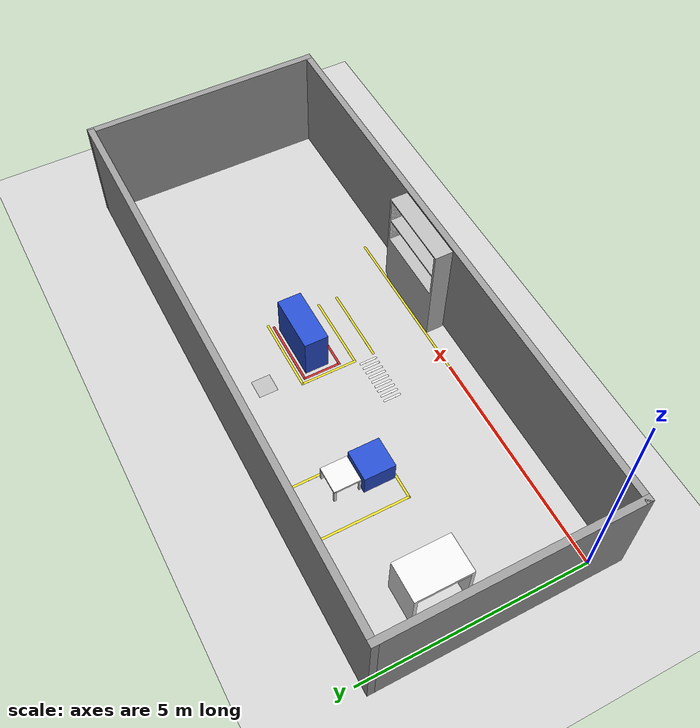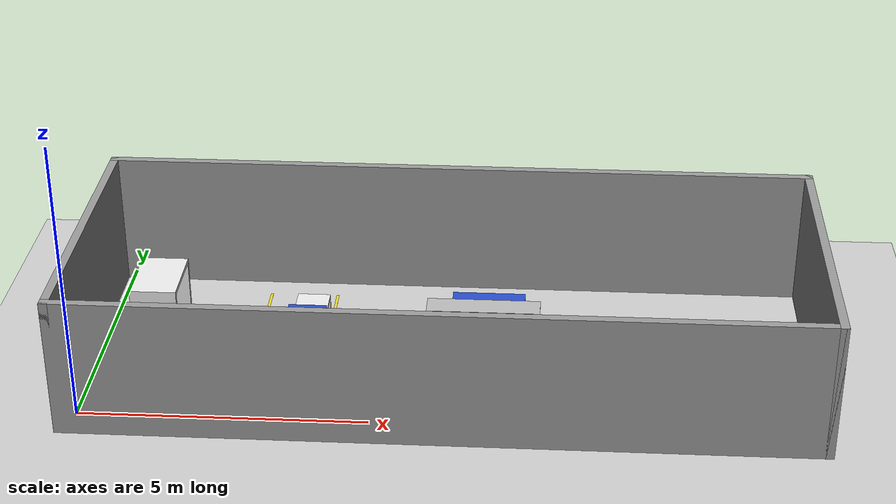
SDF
<sdf version="1.6">
 <world name="default">
  <model name="ground_plane">
   <static>1</static>
   <link name="link">
    <collision name="collision">
     <geometry><plane><normal>0 0 1</normal><size>100 100</size></plane></geometry>
     <surface><friction><ode><mu>100</mu><mu2>50</mu2></ode></friction></surface>
    </collision>
    <visual name="visual">
     <cast_shadows>0</cast_shadows>
     <geometry><plane><normal>0 0 1</normal><size>100 100</size></plane></geometry>
     <material>
      <script><uri>file://media/materials/scripts/gazebo.material</uri><name>Gazebo/Grey</name></script>
     </material>
    </visual>
   </link>
  </model>
  <model name="line4m">
   <link name="link_3">
    <inertial>
     <mass>1</mass>
     <inertia>
      <ixx>0.166667</ixx>
      <ixy>0</ixy>
      <ixz>0</ixz>
      <iyy>0.166667</iyy>
      <iyz>0</iyz>
      <izz>0.166667</izz>
     </inertia>
    </inertial>
    <visual name="visual">
     <geometry><box><size>0.05 4 0.001</size></box></geometry>
     <material>
      <lighting>1</lighting>
      <script><uri>file://media/materials/scripts/gazebo.material</uri><name>Gazebo/Yellow</name></script>
     </material>
    </visual>
   </link>
   <static>1</static>
   <pose>6.8 0 0 0 -0 1.5708</pose>
  </model>
  <model name="forkliftRoadSign_1">
   <link name="link_7">
    <inertial>
     <mass>1</mass>
     <inertia>
      <ixx>0.166667</ixx>
      <ixy>0</ixy>
      <ixz>0</ixz>
      <iyy>0.166667</iyy>
      <iyz>0</iyz>
      <izz>0.166667</izz>
     </inertia>
    </inertial>
    <visual name="visual">
     <pose>-0.2 -0.2 0.01 -1.5708 -0 0</pose>
     <geometry>
      <mesh><uri>model://forkliftRoadSign/model/model.dae</uri><scale>0.7 0.7 0.7</scale></mesh>
     </geometry>
     <material><lighting>1</lighting></material>
    </visual>
   </link>
   <static>1</static>
   <pose>6.37777 3.72064 0 0 0 -1.5708</pose>
  </model>
  <model name="cocktail_table">
   <link name="link_1">
    <inertial>
     <mass>1</mass>
     <inertia>
      <ixx>0.166667</ixx>
      <ixy>0</ixy>
      <ixz>0</ixz>
      <iyy>0.166667</iyy>
      <iyz>0</iyz>
      <izz>0.166667</izz>
     </inertia>
    </inertial>
    <visual name="visual">
     <pose>0.42 -0.71 -0.505 0 -0 1.5708</pose>
     <geometry>
      <mesh><uri>model://cocktail_table/model/model.dae</uri><scale>0.96 1.4 0.95</scale></mesh>
     </geometry>
     <material>
      <lighting>1</lighting>
      <script><uri>file://media/materials/scripts/gazebo.material</uri><name>Gazebo/White</name></script>
     </material>
    </visual>
    <collision name="collision">
     <geometry><box><size>0.84 1.26 1.05</size></box></geometry>
     <surface>
      <friction>
       <ode><mu>1</mu><mu2>1</mu2><fdir1>0 0 0</fdir1><slip1>0</slip1><slip2>0</slip2></ode>
       <torsional>
        <coefficient>1</coefficient>
        <patch_radius>0</patch_radius>
        <surface_radius>0</surface_radius>
        <use_patch_radius>1</use_patch_radius>
        <ode><slip>0</slip></ode>
       </torsional>
      </friction>
      <bounce><restitution_coefficient>0</restitution_coefficient><threshold>1e+06</threshold></bounce>
      <contact>
       <collide_without_contact>0</collide_without_contact>
       <collide_without_contact_bitmask>1</collide_without_contact_bitmask>
       <collide_bitmask>1</collide_bitmask>
       <ode>
        <soft_cfm>0</soft_cfm>
        <soft_erp>0.2</soft_erp>
        <kp>1e+13</kp>
        <kd>1</kd>
        <max_vel>0.01</max_vel>
        <min_depth>0</min_depth>
       </ode>
       <bullet>
        <split_impulse>1</split_impulse>
        <split_impulse_penetration_threshold>-0.01</split_impulse_penetration_threshold>
        <soft_cfm>0</soft_cfm>
        <soft_erp>0.2</soft_erp>
        <kp>1e+13</kp>
        <kd>1</kd>
       </bullet>
      </contact>
     </surface>
    </collision>
   </link>
   <static>1</static>
   <pose>0.917342 2.93643 0.525321 0 -0 0</pose>
  </model>
  <model name="zebraCrossing9">
   <link name="link_0">
    <inertial>
     <mass>1</mass>
     <inertia>
      <ixx>0.166667</ixx>
      <ixy>0</ixy>
      <ixz>0</ixz>
      <iyy>0.166667</iyy>
      <iyz>0</iyz>
      <izz>0.166667</izz>
     </inertia>
    </inertial>
    <visual name="visual">
     <geometry><box><size>0.05 0.4 0.001</size></box></geometry>
     <material>
      <lighting>1</lighting>
      <script><uri>file://media/materials/scripts/gazebo.material</uri><name>Gazebo/White</name></script>
      <shader type="pixel"><normal_map>__default__</normal_map></shader>
      <ambient>1 1 1 1</ambient>
      <diffuse>1 1 1 1</diffuse>
      <specular>0.01 0.01 0.01 1</specular>
      <emissive>0 0 0 1</emissive>
     </material>
     <cast_shadows>0</cast_shadows>
    </visual>
    <visual name="ModelPreview_0::link_0::visual_1">
     <pose>0.13 0 0 0 -0 0</pose>
     <geometry><box><size>0.05 0.4 0.001</size></box></geometry>
     <material>
      <lighting>1</lighting>
      <script><uri>file://media/materials/scripts/gazebo.material</uri><name>Gazebo/White</name></script>
      <shader type="pixel"><normal_map>__default__</normal_map></shader>
      <ambient>1 1 1 1</ambient>
      <diffuse>1 1 1 1</diffuse>
      <specular>0.01 0.01 0.01 1</specular>
      <emissive>0 0 0 1</emissive>
     </material>
     <cast_shadows>0</cast_shadows>
    </visual>
    <visual name="ModelPreview_0::link_0::visual_2">
     <pose>0.26 0 0 0 -0 0</pose>
     <geometry><box><size>0.05 0.4 0.001</size></box></geometry>
     <material>
      <lighting>1</lighting>
      <script><uri>file://media/materials/scripts/gazebo.material</uri><name>Gazebo/White</name></script>
      <shader type="pixel"><normal_map>__default__</normal_map></shader>
      <ambient>1 1 1 1</ambient>
      <diffuse>1 1 1 1</diffuse>
      <specular>0.01 0.01 0.01 1</specular>
      <emissive>0 0 0 1</emissive>
     </material>
     <cast_shadows>0</cast_shadows>
    </visual>
    <visual name="ModelPreview_0::link_0::visual_3">
     <pose>0.39 0 0 0 -0 0</pose>
     <geometry><box><size>0.05 0.4 0.001</size></box></geometry>
     <material>
      <lighting>1</lighting>
      <script><uri>file://media/materials/scripts/gazebo.material</uri><name>Gazebo/White</name></script>
      <shader type="pixel"><normal_map>__default__</normal_map></shader>
      <ambient>1 1 1 1</ambient>
      <diffuse>1 1 1 1</diffuse>
      <specular>0.01 0.01 0.01 1</specular>
      <emissive>0 0 0 1</emissive>
     </material>
     <cast_shadows>0</cast_shadows>
    </visual>
    <visual name="ModelPreview_0::link_0::visual_4">
     <pose>0.52 0 0 0 -0 0</pose>
     <geometry><box><size>0.05 0.4 0.001</size></box></geometry>
     <material>
      <lighting>1</lighting>
      <script><uri>file://media/materials/scripts/gazebo.material</uri><name>Gazebo/White</name></script>
      <shader type="pixel"><normal_map>__default__</normal_map></shader>
      <ambient>1 1 1 1</ambient>
      <diffuse>1 1 1 1</diffuse>
      <specular>0.01 0.01 0.01 1</specular>
      <emissive>0 0 0 1</emissive>
     </material>
     <cast_shadows>0</cast_shadows>
    </visual>
    <visual name="ModelPreview_0::link_0::visual_5">
     <pose>-0.13 0 0 0 -0 0</pose>
     <geometry><box><size>0.05 0.4 0.001</size></box></geometry>
     <material>
      <lighting>1</lighting>
      <script><uri>file://media/materials/scripts/gazebo.material</uri><name>Gazebo/White</name></script>
      <shader type="pixel"><normal_map>__default__</normal_map></shader>
      <ambient>1 1 1 1</ambient>
      <diffuse>1 1 1 1</diffuse>
      <specular>0.01 0.01 0.01 1</specular>
      <emissive>0 0 0 1</emissive>
     </material>
     <cast_shadows>0</cast_shadows>
    </visual>
    <visual name="ModelPreview_0::link_0::visual_6">
     <pose>-0.26 0 0 0 -0 0</pose>
     <geometry><box><size>0.05 0.4 0.001</size></box></geometry>
     <material>
      <lighting>1</lighting>
      <script><uri>file://media/materials/scripts/gazebo.material</uri><name>Gazebo/White</name></script>
      <shader type="pixel"><normal_map>__default__</normal_map></shader>
      <ambient>1 1 1 1</ambient>
      <diffuse>1 1 1 1</diffuse>
      <specular>0.01 0.01 0.01 1</specular>
      <emissive>0 0 0 1</emissive>
     </material>
     <cast_shadows>0</cast_shadows>
    </visual>
    <visual name="ModelPreview_0::link_0::visual_7">
     <pose>-0.39 0 0 0 -0 0</pose>
     <geometry><box><size>0.05 0.4 0.001</size></box></geometry>
     <material>
      <lighting>1</lighting>
      <script><uri>file://media/materials/scripts/gazebo.material</uri><name>Gazebo/White</name></script>
      <shader type="pixel"><normal_map>__default__</normal_map></shader>
      <ambient>1 1 1 1</ambient>
      <diffuse>1 1 1 1</diffuse>
      <specular>0.01 0.01 0.01 1</specular>
      <emissive>0 0 0 1</emissive>
     </material>
     <cast_shadows>0</cast_shadows>
    </visual>
    <visual name="ModelPreview_0::link_0::visual_8">
     <pose>-0.52 0 0 0 -0 0</pose>
     <geometry><box><size>0.05 0.4 0.001</size></box></geometry>
     <material>
      <lighting>1</lighting>
      <script><uri>file://media/materials/scripts/gazebo.material</uri><name>Gazebo/White</name></script>
      <shader type="pixel"><normal_map>__default__</normal_map></shader>
      <ambient>1 1 1 1</ambient>
      <diffuse>1 1 1 1</diffuse>
      <specular>0.01 0.01 0.01 1</specular>
      <emissive>0 0 0 1</emissive>
     </material>
     <cast_shadows>0</cast_shadows>
    </visual>
   </link>
   <static>1</static>
   <pose>5.43019 1.45864 0 0 -0 0</pose>
  </model>
  <model name="line175cm_0">
   <link name="link_1">
    <inertial>
     <mass>1</mass>
     <inertia>
      <ixx>0.166667</ixx>
      <ixy>0</ixy>
      <ixz>0</ixz>
      <iyy>0.166667</iyy>
      <iyz>0</iyz>
      <izz>0.166667</izz>
     </inertia>
    </inertial>
    <visual name="visual">
     <geometry><box><size>1.75 0.05 0.001</size></box></geometry>
     <material>
      <script><uri>file://media/materials/scripts/gazebo.material</uri><name>Gazebo/Yellow</name></script>
     </material>
    </visual>
    <collision name="collision">
     <geometry><box><size>1.75 0.05 1e-05</size></box></geometry>
     <surface>
      <friction>
       <ode><mu>1</mu><mu2>1</mu2><fdir1>0 0 0</fdir1><slip1>0</slip1><slip2>0</slip2></ode>
       <torsional>
        <coefficient>1</coefficient>
        <patch_radius>0</patch_radius>
        <surface_radius>0</surface_radius>
        <use_patch_radius>1</use_patch_radius>
        <ode><slip>0</slip></ode>
       </torsional>
      </friction>
      <bounce><restitution_coefficient>0</restitution_coefficient><threshold>1e+06</threshold></bounce>
      <contact>
       <collide_without_contact>0</collide_without_contact>
       <collide_without_contact_bitmask>1</collide_without_contact_bitmask>
       <collide_bitmask>1</collide_bitmask>
       <ode>
        <soft_cfm>0</soft_cfm>
        <soft_erp>0.2</soft_erp>
        <kp>1e+13</kp>
        <kd>1</kd>
        <max_vel>0.01</max_vel>
        <min_depth>0</min_depth>
       </ode>
       <bullet>
        <split_impulse>1</split_impulse>
        <split_impulse_penetration_threshold>-0.01</split_impulse_penetration_threshold>
        <soft_cfm>0</soft_cfm>
        <soft_erp>0.2</soft_erp>
        <kp>1e+13</kp>
        <kd>1</kd>
       </bullet>
      </contact>
     </surface>
    </collision>
   </link>
   <static>1</static>
   <pose>6.925 2.97 0 0 -0 0</pose>
  </model>
  <model name="line175cm_0_clone">
   <link name="link_1">
    <inertial>
     <mass>1</mass>
     <inertia>
      <ixx>0.166667</ixx>
      <ixy>0</ixy>
      <ixz>0</ixz>
      <iyy>0.166667</iyy>
      <iyz>0</iyz>
      <izz>0.166667</izz>
     </inertia>
    </inertial>
    <visual name="visual">
     <geometry><box><size>1.75 0.05 0.001</size></box></geometry>
     <material>
      <script><uri>file://media/materials/scripts/gazebo.material</uri><name>Gazebo/Yellow</name></script>
     </material>
    </visual>
    <collision name="collision">
     <geometry><box><size>1.75 0.05 1e-05</size></box></geometry>
     <surface>
      <friction>
       <ode><mu>1</mu><mu2>1</mu2><fdir1>0 0 0</fdir1><slip1>0</slip1><slip2>0</slip2></ode>
       <torsional>
        <coefficient>1</coefficient>
        <patch_radius>0</patch_radius>
        <surface_radius>0</surface_radius>
        <use_patch_radius>1</use_patch_radius>
        <ode><slip>0</slip></ode>
       </torsional>
      </friction>
      <bounce><restitution_coefficient>0</restitution_coefficient><threshold>1e+06</threshold></bounce>
      <contact>
       <collide_without_contact>0</collide_without_contact>
       <collide_without_contact_bitmask>1</collide_without_contact_bitmask>
       <collide_bitmask>1</collide_bitmask>
       <ode>
        <soft_cfm>0</soft_cfm>
        <soft_erp>0.2</soft_erp>
        <kp>1e+13</kp>
        <kd>1</kd>
        <max_vel>0.01</max_vel>
        <min_depth>0</min_depth>
       </ode>
       <bullet>
        <split_impulse>1</split_impulse>
        <split_impulse_penetration_threshold>-0.01</split_impulse_penetration_threshold>
        <soft_cfm>0</soft_cfm>
        <soft_erp>0.2</soft_erp>
        <kp>1e+13</kp>
        <kd>1</kd>
       </bullet>
      </contact>
     </surface>
    </collision>
   </link>
   <static>1</static>
   <pose>6.925 1.72 0 0 -0 0</pose>
  </model>
  <model name="line175cm_0_clone_clone">
   <link name="link_1">
    <inertial>
     <mass>1</mass>
     <inertia>
      <ixx>0.166667</ixx>
      <ixy>0</ixy>
      <ixz>0</ixz>
      <iyy>0.166667</iyy>
      <iyz>0</iyz>
      <izz>0.166667</izz>
     </inertia>
    </inertial>
    <visual name="visual">
     <geometry><box><size>1.75 0.05 0.001</size></box></geometry>
     <material>
      <script><uri>file://media/materials/scripts/gazebo.material</uri><name>Gazebo/Yellow</name></script>
     </material>
    </visual>
    <collision name="collision">
     <geometry><box><size>1.75 0.05 1e-05</size></box></geometry>
     <surface>
      <friction>
       <ode><mu>1</mu><mu2>1</mu2><fdir1>0 0 0</fdir1><slip1>0</slip1><slip2>0</slip2></ode>
       <torsional>
        <coefficient>1</coefficient>
        <patch_radius>0</patch_radius>
        <surface_radius>0</surface_radius>
        <use_patch_radius>1</use_patch_radius>
        <ode><slip>0</slip></ode>
       </torsional>
      </friction>
      <bounce><restitution_coefficient>0</restitution_coefficient><threshold>1e+06</threshold></bounce>
      <contact>
       <collide_without_contact>0</collide_without_contact>
       <collide_without_contact_bitmask>1</collide_without_contact_bitmask>
       <collide_bitmask>1</collide_bitmask>
       <ode>
        <soft_cfm>0</soft_cfm>
        <soft_erp>0.2</soft_erp>
        <kp>1e+13</kp>
        <kd>1</kd>
        <max_vel>0.01</max_vel>
        <min_depth>0</min_depth>
       </ode>
       <bullet>
        <split_impulse>1</split_impulse>
        <split_impulse_penetration_threshold>-0.01</split_impulse_penetration_threshold>
        <soft_cfm>0</soft_cfm>
        <soft_erp>0.2</soft_erp>
        <kp>1e+13</kp>
        <kd>1</kd>
       </bullet>
      </contact>
     </surface>
    </collision>
   </link>
   <static>1</static>
   <pose>6.925 1.27 0 0 -0 0</pose>
  </model>
  <model name="line130cm_0_clone">
   <link name="link_1">
    <inertial>
     <mass>1</mass>
     <inertia>
      <ixx>0.166667</ixx>
      <ixy>0</ixy>
      <ixz>0</ixz>
      <iyy>0.166667</iyy>
      <iyz>0</iyz>
      <izz>0.166667</izz>
     </inertia>
    </inertial>
    <visual name="visual">
     <geometry><box><size>1.3 0.05 0.001</size></box></geometry>
     <material>
      <script><uri>file://media/materials/scripts/gazebo.material</uri><name>Gazebo/Yellow</name></script>
     </material>
    </visual>
    <collision name="collision">
     <geometry><box><size>1.3 0.05 1e-05</size></box></geometry>
     <surface>
      <friction>
       <ode><mu>1</mu><mu2>1</mu2><fdir1>0 0 0</fdir1><slip1>0</slip1><slip2>0</slip2></ode>
       <torsional>
        <coefficient>1</coefficient>
        <patch_radius>0</patch_radius>
        <surface_radius>0</surface_radius>
        <use_patch_radius>1</use_patch_radius>
        <ode><slip>0</slip></ode>
       </torsional>
      </friction>
      <bounce><restitution_coefficient>0</restitution_coefficient><threshold>1e+06</threshold></bounce>
      <contact>
       <collide_without_contact>0</collide_without_contact>
       <collide_without_contact_bitmask>1</collide_without_contact_bitmask>
       <collide_bitmask>1</collide_bitmask>
       <ode>
        <soft_cfm>0</soft_cfm>
        <soft_erp>0.2</soft_erp>
        <kp>1e+13</kp>
        <kd>1</kd>
        <max_vel>0.01</max_vel>
        <min_depth>0</min_depth>
       </ode>
       <bullet>
        <split_impulse>1</split_impulse>
        <split_impulse_penetration_threshold>-0.01</split_impulse_penetration_threshold>
        <soft_cfm>0</soft_cfm>
        <soft_erp>0.2</soft_erp>
        <kp>1e+13</kp>
        <kd>1</kd>
       </bullet>
      </contact>
     </surface>
    </collision>
   </link>
   <static>1</static>
   <pose>6.075 2.345 0 0 -0 1.5708</pose>
  </model>
  <model name="line2m">
   <link name="link_0">
    <inertial>
     <mass>1</mass>
     <inertia>
      <ixx>0.166667</ixx>
      <ixy>0</ixy>
      <ixz>0</ixz>
      <iyy>0.166667</iyy>
      <iyz>0</iyz>
      <izz>0.166667</izz>
     </inertia>
    </inertial>
    <visual name="visual">
     <geometry><box><size>2 0.05 0.001</size></box></geometry>
     <material>
      <lighting>1</lighting>
      <script><uri>file://media/materials/scripts/gazebo.material</uri><name>Gazebo/Yellow</name></script>
     </material>
    </visual>
    <collision name="collision">
     <geometry><box><size>2 0.05 1e-05</size></box></geometry>
     <surface>
      <friction>
       <ode><mu>1</mu><mu2>1</mu2><fdir1>0 0 0</fdir1><slip1>0</slip1><slip2>0</slip2></ode>
       <torsional>
        <coefficient>1</coefficient>
        <patch_radius>0</patch_radius>
        <surface_radius>0</surface_radius>
        <use_patch_radius>1</use_patch_radius>
        <ode><slip>0</slip></ode>
       </torsional>
      </friction>
      <bounce><restitution_coefficient>0</restitution_coefficient><threshold>1e+06</threshold></bounce>
      <contact>
       <collide_without_contact>0</collide_without_contact>
       <collide_without_contact_bitmask>1</collide_without_contact_bitmask>
       <collide_bitmask>1</collide_bitmask>
       <ode>
        <soft_cfm>0</soft_cfm>
        <soft_erp>0.2</soft_erp>
        <kp>1e+13</kp>
        <kd>1</kd>
        <max_vel>0.01</max_vel>
        <min_depth>0</min_depth>
       </ode>
       <bullet>
        <split_impulse>1</split_impulse>
        <split_impulse_penetration_threshold>-0.01</split_impulse_penetration_threshold>
        <soft_cfm>0</soft_cfm>
        <soft_erp>0.2</soft_erp>
        <kp>1e+13</kp>
        <kd>1</kd>
       </bullet>
      </contact>
     </surface>
    </collision>
   </link>
   <static>1</static>
   <pose>4 3.27 0 0 -0 1.5708</pose>
  </model>
  <model name="line2m_3">
   <link name="link_0">
    <inertial>
     <mass>1</mass>
     <inertia>
      <ixx>0.166667</ixx>
      <ixy>0</ixy>
      <ixz>0</ixz>
      <iyy>0.166667</iyy>
      <iyz>0</iyz>
      <izz>0.166667</izz>
     </inertia>
    </inertial>
    <visual name="visual">
     <geometry><box><size>2 0.05 0.001</size></box></geometry>
     <material>
      <lighting>1</lighting>
      <script><uri>file://media/materials/scripts/gazebo.material</uri><name>Gazebo/Yellow</name></script>
     </material>
    </visual>
    <collision name="collision">
     <geometry><box><size>2 0.05 1e-05</size></box></geometry>
     <surface>
      <friction>
       <ode><mu>1</mu><mu2>1</mu2><fdir1>0 0 0</fdir1><slip1>0</slip1><slip2>0</slip2></ode>
       <torsional>
        <coefficient>1</coefficient>
        <patch_radius>0</patch_radius>
        <surface_radius>0</surface_radius>
        <use_patch_radius>1</use_patch_radius>
        <ode><slip>0</slip></ode>
       </torsional>
      </friction>
      <bounce><restitution_coefficient>0</restitution_coefficient><threshold>1e+06</threshold></bounce>
      <contact>
       <collide_without_contact>0</collide_without_contact>
       <collide_without_contact_bitmask>1</collide_without_contact_bitmask>
       <collide_bitmask>1</collide_bitmask>
       <ode>
        <soft_cfm>0</soft_cfm>
        <soft_erp>0.2</soft_erp>
        <kp>1e+13</kp>
        <kd>1</kd>
        <max_vel>0.01</max_vel>
        <min_depth>0</min_depth>
       </ode>
       <bullet>
        <split_impulse>1</split_impulse>
        <split_impulse_penetration_threshold>-0.01</split_impulse_penetration_threshold>
        <soft_cfm>0</soft_cfm>
        <soft_erp>0.2</soft_erp>
        <kp>1e+13</kp>
        <kd>1</kd>
       </bullet>
      </contact>
     </surface>
    </collision>
   </link>
   <static>1</static>
   <pose>2.75 3.27 0 0 -0 1.5708</pose>
  </model>
  <model name="line130cm_1">
   <link name="link_1">
    <inertial>
     <mass>1</mass>
     <inertia>
      <ixx>0.166667</ixx>
      <ixy>0</ixy>
      <ixz>0</ixz>
      <iyy>0.166667</iyy>
      <iyz>0</iyz>
      <izz>0.166667</izz>
     </inertia>
    </inertial>
    <visual name="visual">
     <geometry><box><size>1.3 0.05 0.001</size></box></geometry>
     <material>
      <script><uri>file://media/materials/scripts/gazebo.material</uri><name>Gazebo/Yellow</name></script>
     </material>
    </visual>
    <collision name="collision">
     <geometry><box><size>1.3 0.05 1e-05</size></box></geometry>
     <surface>
      <friction>
       <ode><mu>1</mu><mu2>1</mu2><fdir1>0 0 0</fdir1><slip1>0</slip1><slip2>0</slip2></ode>
       <torsional>
        <coefficient>1</coefficient>
        <patch_radius>0</patch_radius>
        <surface_radius>0</surface_radius>
        <use_patch_radius>1</use_patch_radius>
        <ode><slip>0</slip></ode>
       </torsional>
      </friction>
      <bounce><restitution_coefficient>0</restitution_coefficient><threshold>1e+06</threshold></bounce>
      <contact>
       <collide_without_contact>0</collide_without_contact>
       <collide_without_contact_bitmask>1</collide_without_contact_bitmask>
       <collide_bitmask>1</collide_bitmask>
       <ode>
        <soft_cfm>0</soft_cfm>
        <soft_erp>0.2</soft_erp>
        <kp>1e+13</kp>
        <kd>1</kd>
        <max_vel>0.01</max_vel>
        <min_depth>0</min_depth>
       </ode>
       <bullet>
        <split_impulse>1</split_impulse>
        <split_impulse_penetration_threshold>-0.01</split_impulse_penetration_threshold>
        <soft_cfm>0</soft_cfm>
        <soft_erp>0.2</soft_erp>
        <kp>1e+13</kp>
        <kd>1</kd>
       </bullet>
      </contact>
     </surface>
    </collision>
   </link>
   <static>1</static>
   <pose>3.375 2.295 0 0 -0 0</pose>
  </model>
  <model name="robot_kolu_070">
   <link name="link_0">
    <inertial>
     <mass>1</mass>
     <inertia>
      <ixx>0.166667</ixx>
      <ixy>0</ixy>
      <ixz>0</ixz>
      <iyy>0.166667</iyy>
      <iyz>0</iyz>
      <izz>0.166667</izz>
     </inertia>
    </inertial>
    <visual name="visual">
     <geometry><box><size>0.7 0.7 1</size></box></geometry>
     <material>
      <lighting>1</lighting>
      <script><uri>file://media/materials/scripts/gazebo.material</uri><name>Gazebo/Blue</name></script>
     </material>
    </visual>
    <collision name="collision">
     <geometry><box><size>0.7 0.7 1</size></box></geometry>
     <surface>
      <friction>
       <ode><mu>1</mu><mu2>1</mu2><fdir1>0 0 0</fdir1><slip1>0</slip1><slip2>0</slip2></ode>
       <torsional>
        <coefficient>1</coefficient>
        <patch_radius>0</patch_radius>
        <surface_radius>0</surface_radius>
        <use_patch_radius>1</use_patch_radius>
        <ode><slip>0</slip></ode>
       </torsional>
      </friction>
      <bounce><restitution_coefficient>0</restitution_coefficient><threshold>1e+06</threshold></bounce>
      <contact>
       <collide_without_contact>0</collide_without_contact>
       <collide_without_contact_bitmask>1</collide_without_contact_bitmask>
       <collide_bitmask>1</collide_bitmask>
       <ode>
        <soft_cfm>0</soft_cfm>
        <soft_erp>0.2</soft_erp>
        <kp>1e+13</kp>
        <kd>1</kd>
        <max_vel>0.01</max_vel>
        <min_depth>0</min_depth>
       </ode>
       <bullet>
        <split_impulse>1</split_impulse>
        <split_impulse_penetration_threshold>-0.01</split_impulse_penetration_threshold>
        <soft_cfm>0</soft_cfm>
        <soft_erp>0.2</soft_erp>
        <kp>1e+13</kp>
        <kd>1</kd>
       </bullet>
      </contact>
     </surface>
    </collision>
   </link>
   <static>1</static>
   <pose>3.59926 2.67999 0 0 -0 0</pose>
  </model>
  <model name="line155cm">
   <link name="link_1">
    <inertial>
     <mass>1</mass>
     <inertia>
      <ixx>0.166667</ixx>
      <ixy>0</ixy>
      <ixz>0</ixz>
      <iyy>0.166667</iyy>
      <iyz>0</iyz>
      <izz>0.166667</izz>
     </inertia>
    </inertial>
    <visual name="visual">
     <geometry><box><size>1.55 0.05 0.001</size></box></geometry>
     <material>
      <script><uri>file://media/materials/scripts/gazebo.material</uri><name>Gazebo/Red</name></script>
     </material>
    </visual>
    <collision name="collision">
     <geometry><box><size>1.55 0.05 1e-05</size></box></geometry>
     <surface>
      <friction>
       <ode><mu>1</mu><mu2>1</mu2><fdir1>0 0 0</fdir1><slip1>0</slip1><slip2>0</slip2></ode>
       <torsional>
        <coefficient>1</coefficient>
        <patch_radius>0</patch_radius>
        <surface_radius>0</surface_radius>
        <use_patch_radius>1</use_patch_radius>
        <ode><slip>0</slip></ode>
       </torsional>
      </friction>
      <bounce><restitution_coefficient>0</restitution_coefficient><threshold>1e+06</threshold></bounce>
      <contact>
       <collide_without_contact>0</collide_without_contact>
       <collide_without_contact_bitmask>1</collide_without_contact_bitmask>
       <collide_bitmask>1</collide_bitmask>
       <ode>
        <soft_cfm>0</soft_cfm>
        <soft_erp>0.2</soft_erp>
        <kp>1e+13</kp>
        <kd>1</kd>
        <max_vel>0.01</max_vel>
        <min_depth>0</min_depth>
       </ode>
       <bullet>
        <split_impulse>1</split_impulse>
        <split_impulse_penetration_threshold>-0.01</split_impulse_penetration_threshold>
        <soft_cfm>0</soft_cfm>
        <soft_erp>0.2</soft_erp>
        <kp>1e+13</kp>
        <kd>1</kd>
       </bullet>
      </contact>
     </surface>
    </collision>
   </link>
   <static>1</static>
   <pose>6.925 2.87 0 0 -0 0</pose>
  </model>
  <model name="line155cm_clone">
   <link name="link_1">
    <inertial>
     <mass>1</mass>
     <inertia>
      <ixx>0.166667</ixx>
      <ixy>0</ixy>
      <ixz>0</ixz>
      <iyy>0.166667</iyy>
      <iyz>0</iyz>
      <izz>0.166667</izz>
     </inertia>
    </inertial>
    <visual name="visual">
     <geometry><box><size>1.55 0.05 0.001</size></box></geometry>
     <material>
      <script><uri>file://media/materials/scripts/gazebo.material</uri><name>Gazebo/Red</name></script>
     </material>
    </visual>
    <collision name="collision">
     <geometry><box><size>1.55 0.05 1e-05</size></box></geometry>
     <surface>
      <friction>
       <ode><mu>1</mu><mu2>1</mu2><fdir1>0 0 0</fdir1><slip1>0</slip1><slip2>0</slip2></ode>
       <torsional>
        <coefficient>1</coefficient>
        <patch_radius>0</patch_radius>
        <surface_radius>0</surface_radius>
        <use_patch_radius>1</use_patch_radius>
        <ode><slip>0</slip></ode>
       </torsional>
      </friction>
      <bounce><restitution_coefficient>0</restitution_coefficient><threshold>1e+06</threshold></bounce>
      <contact>
       <collide_without_contact>0</collide_without_contact>
       <collide_without_contact_bitmask>1</collide_without_contact_bitmask>
       <collide_bitmask>1</collide_bitmask>
       <ode>
        <soft_cfm>0</soft_cfm>
        <soft_erp>0.2</soft_erp>
        <kp>1e+13</kp>
        <kd>1</kd>
        <max_vel>0.01</max_vel>
        <min_depth>0</min_depth>
       </ode>
       <bullet>
        <split_impulse>1</split_impulse>
        <split_impulse_penetration_threshold>-0.01</split_impulse_penetration_threshold>
        <soft_cfm>0</soft_cfm>
        <soft_erp>0.2</soft_erp>
        <kp>1e+13</kp>
        <kd>1</kd>
       </bullet>
      </contact>
     </surface>
    </collision>
   </link>
   <static>1</static>
   <pose>6.925 2.047 0 0 -0 0</pose>
  </model>
  <model name="line87cm">
   <link name="link_1">
    <inertial>
     <mass>1</mass>
     <inertia>
      <ixx>0.166667</ixx>
      <ixy>0</ixy>
      <ixz>0</ixz>
      <iyy>0.166667</iyy>
      <iyz>0</iyz>
      <izz>0.166667</izz>
     </inertia>
    </inertial>
    <visual name="visual">
     <geometry><box><size>0.87 0.05 0.001</size></box></geometry>
     <material>
      <script><uri>file://media/materials/scripts/gazebo.material</uri><name>Gazebo/Red</name></script>
     </material>
    </visual>
    <collision name="collision">
     <geometry><box><size>0.87 0.05 1e-05</size></box></geometry>
     <surface>
      <friction>
       <ode><mu>1</mu><mu2>1</mu2><fdir1>0 0 0</fdir1><slip1>0</slip1><slip2>0</slip2></ode>
       <torsional>
        <coefficient>1</coefficient>
        <patch_radius>0</patch_radius>
        <surface_radius>0</surface_radius>
        <use_patch_radius>1</use_patch_radius>
        <ode><slip>0</slip></ode>
       </torsional>
      </friction>
      <bounce><restitution_coefficient>0</restitution_coefficient><threshold>1e+06</threshold></bounce>
      <contact>
       <collide_without_contact>0</collide_without_contact>
       <collide_without_contact_bitmask>1</collide_without_contact_bitmask>
       <collide_bitmask>1</collide_bitmask>
       <ode>
        <soft_cfm>0</soft_cfm>
        <soft_erp>0.2</soft_erp>
        <kp>1e+13</kp>
        <kd>1</kd>
        <max_vel>0.01</max_vel>
        <min_depth>0</min_depth>
       </ode>
       <bullet>
        <split_impulse>1</split_impulse>
        <split_impulse_penetration_threshold>-0.01</split_impulse_penetration_threshold>
        <soft_cfm>0</soft_cfm>
        <soft_erp>0.2</soft_erp>
        <kp>1e+13</kp>
        <kd>1</kd>
       </bullet>
      </contact>
     </surface>
    </collision>
   </link>
   <static>1</static>
   <pose>6.175 2.46 0 0 -0 1.5708</pose>
  </model>
  <model name="makine1_129x54">
   <link name="link_1">
    <inertial>
     <mass>1</mass>
     <inertia>
      <ixx>0.166667</ixx>
      <ixy>0</ixy>
      <ixz>0</ixz>
      <iyy>0.166667</iyy>
      <iyz>0</iyz>
      <izz>0.166667</izz>
     </inertia>
    </inertial>
    <visual name="visual">
     <pose>0 0 0.5 0 -0 0</pose>
     <geometry><box><size>1.29 0.54 1</size></box></geometry>
     <material>
      <lighting>1</lighting>
      <script><uri>file://media/materials/scripts/gazebo.material</uri><name>Gazebo/Blue</name></script>
     </material>
    </visual>
    <collision name="collision">
     <pose>0 0 0.5 0 -0 0</pose>
     <geometry><box><size>1.29 0.54 1</size></box></geometry>
     <surface>
      <friction>
       <ode><mu>1</mu><mu2>1</mu2><fdir1>0 0 0</fdir1><slip1>0</slip1><slip2>0</slip2></ode>
       <torsional>
        <coefficient>1</coefficient>
        <patch_radius>0</patch_radius>
        <surface_radius>0</surface_radius>
        <use_patch_radius>1</use_patch_radius>
        <ode><slip>0</slip></ode>
       </torsional>
      </friction>
      <bounce><restitution_coefficient>0</restitution_coefficient><threshold>1e+06</threshold></bounce>
      <contact>
       <collide_without_contact>0</collide_without_contact>
       <collide_without_contact_bitmask>1</collide_without_contact_bitmask>
       <collide_bitmask>1</collide_bitmask>
       <ode>
        <soft_cfm>0</soft_cfm>
        <soft_erp>0.2</soft_erp>
        <kp>1e+13</kp>
        <kd>1</kd>
        <max_vel>0.01</max_vel>
        <min_depth>0</min_depth>
       </ode>
       <bullet>
        <split_impulse>1</split_impulse>
        <split_impulse_penetration_threshold>-0.01</split_impulse_penetration_threshold>
        <soft_cfm>0</soft_cfm>
        <soft_erp>0.2</soft_erp>
        <kp>1e+13</kp>
        <kd>1</kd>
       </bullet>
      </contact>
     </surface>
    </collision>
   </link>
   <static>1</static>
   <pose>6.925 2.52 0 0 -0 0</pose>
  </model>
  <model name="demoWall22082019_v2">
   <pose>6.25 2.135 0 0 -0 0</pose>
   <link name="Wall_0">
    <collision name="Wall_0_Collision">
     <geometry><box><size>12.995 0.15 2.5</size></box></geometry>
     <pose>0 0 1.25 0 -0 0</pose>
    </collision>
    <visual name="Wall_0_Visual">
     <pose>0 0 1.25 0 -0 0</pose>
     <geometry><box><size>12.995 0.15 2.5</size></box></geometry>
     <material>
      <script><uri>file://media/materials/scripts/gazebo.material</uri><name>Gazebo/Grey</name></script>
      <ambient>1 1 1 1</ambient>
     </material>
     <meta><layer>0</layer></meta>
    </visual>
    <pose>-0 -2.665 0 0 -0 0</pose>
   </link>
   <link name="Wall_3">
    <collision name="Wall_3_Collision">
     <geometry><box><size>5.48 0.15 2.5</size></box></geometry>
     <pose>0 0 1.25 0 -0 0</pose>
    </collision>
    <visual name="Wall_3_Visual">
     <pose>0 0 1.25 0 -0 0</pose>
     <geometry><box><size>5.48 0.15 2.5</size></box></geometry>
     <material>
      <script><uri>file://media/materials/scripts/gazebo.material</uri><name>Gazebo/Grey</name></script>
      <ambient>1 1 1 1</ambient>
     </material>
     <meta><layer>0</layer></meta>
    </visual>
    <pose>6.4225 0 0 0 -0 1.5708</pose>
   </link>
   <link name="Wall_5">
    <collision name="Wall_5_Collision">
     <geometry><box><size>12.995 0.15 2.5</size></box></geometry>
     <pose>0 0 1.25 0 -0 0</pose>
    </collision>
    <visual name="Wall_5_Visual">
     <pose>0 0 1.25 0 -0 0</pose>
     <geometry><box><size>12.995 0.15 2.5</size></box></geometry>
     <material>
      <script><uri>file://media/materials/scripts/gazebo.material</uri><name>Gazebo/Grey</name></script>
      <ambient>1 1 1 1</ambient>
     </material>
     <meta><layer>0</layer></meta>
    </visual>
    <pose>-0 2.665 0 0 -0 3.14159</pose>
   </link>
   <link name="Wall_6">
    <collision name="Wall_6_Collision">
     <geometry><box><size>5.48 0.15 2.5</size></box></geometry>
     <pose>0 0 1.25 0 -0 0</pose>
    </collision>
    <visual name="Wall_6_Visual">
     <pose>0 0 1.25 0 -0 0</pose>
     <geometry><box><size>5.48 0.15 2.5</size></box></geometry>
     <material>
      <script><uri>file://media/materials/scripts/gazebo.material</uri><name>Gazebo/Grey</name></script>
      <ambient>1 1 1 1</ambient>
     </material>
     <meta><layer>0</layer></meta>
    </visual>
    <pose>-6.4225 0 0 0 -0 -1.5708</pose>
   </link>
   <static>1</static>
  </model>
  <model name="unit_box">
   <pose>6.96564 -0.228359 1.22951 0 -0 0</pose>
   <link name="link">
    <inertial>
     <mass>1</mass>
     <inertia>
      <ixx>0.166667</ixx>
      <ixy>0</ixy>
      <ixz>0</ixz>
      <iyy>0.166667</iyy>
      <iyz>0</iyz>
      <izz>0.166667</izz>
     </inertia>
    </inertial>
    <collision name="collision"><geometry><box><size>1.75101 0.406845 2.46204</size></box></geometry></collision>
    <visual name="visual">
     <pose>7 -0.38 -1.25 0 -0 1.570796</pose>
     <geometry>
      <mesh><uri>model://fireCabinet/model/storage+cabinet/model.dae</uri><scale>1 3 1.5</scale></mesh>
     </geometry>
    </visual>
   </link>
   <static>1</static>
  </model>
  <model name="sehpa">
   <link name="link_0">
    <inertial>
     <mass>1</mass>
     <inertia>
      <ixx>0.166667</ixx>
      <ixy>0</ixy>
      <ixz>0</ixz>
      <iyy>0.166667</iyy>
      <iyz>0</iyz>
      <izz>0.166667</izz>
     </inertia>
    </inertial>
    <visual name="ModelPreview_0::link_0::visual_1">
     <pose>0.275 0.275 -0.175 0 -0 0</pose>
     <geometry><box><size>0.05 0.05 0.35</size></box></geometry>
     <material>
      <lighting>1</lighting>
      <script><uri>file://media/materials/scripts/gazebo.material</uri><name>Gazebo/White</name></script>
     </material>
    </visual>
    <visual name="ModelPreview_0::link_0::visual_2">
     <pose>0.275 -0.275 -0.175 0 -0 0</pose>
     <geometry><box><size>0.05 0.05 0.35</size></box></geometry>
     <material>
      <lighting>1</lighting>
      <script><uri>file://media/materials/scripts/gazebo.material</uri><name>Gazebo/White</name></script>
     </material>
    </visual>
    <visual name="visual">
     <geometry><box><size>0.6 0.6 0.05</size></box></geometry>
     <material>
      <lighting>1</lighting>
      <script><uri>file://media/materials/scripts/gazebo.material</uri><name>Gazebo/White</name></script>
     </material>
    </visual>
    <visual name="ModelPreview_0::link_0::visual_3">
     <pose>-0.275 -0.275 -0.175 0 -0 0</pose>
     <geometry><box><size>0.05 0.05 0.35</size></box></geometry>
     <material>
      <lighting>1</lighting>
      <script><uri>file://media/materials/scripts/gazebo.material</uri><name>Gazebo/White</name></script>
     </material>
    </visual>
    <visual name="ModelPreview_0::link_0::visual_4">
     <pose>-0.275 0.275 -0.175 0 -0 0</pose>
     <geometry><box><size>0.05 0.05 0.35</size></box></geometry>
     <material>
      <lighting>1</lighting>
      <script><uri>file://media/materials/scripts/gazebo.material</uri><name>Gazebo/White</name></script>
     </material>
    </visual>
    <collision name="collision">
     <geometry><box><size>0.6 0.6 0.05</size></box></geometry>
     <surface>
      <friction>
       <ode><mu>1</mu><mu2>1</mu2><fdir1>0 0 0</fdir1><slip1>0</slip1><slip2>0</slip2></ode>
       <torsional>
        <coefficient>1</coefficient>
        <patch_radius>0</patch_radius>
        <surface_radius>0</surface_radius>
        <use_patch_radius>1</use_patch_radius>
        <ode><slip>0</slip></ode>
       </torsional>
      </friction>
      <bounce><restitution_coefficient>0</restitution_coefficient><threshold>1e+06</threshold></bounce>
      <contact>
       <collide_without_contact>0</collide_without_contact>
       <collide_without_contact_bitmask>1</collide_without_contact_bitmask>
       <collide_bitmask>1</collide_bitmask>
       <ode>
        <soft_cfm>0</soft_cfm>
        <soft_erp>0.2</soft_erp>
        <kp>1e+13</kp>
        <kd>1</kd>
        <max_vel>0.01</max_vel>
        <min_depth>0</min_depth>
       </ode>
       <bullet>
        <split_impulse>1</split_impulse>
        <split_impulse_penetration_threshold>-0.01</split_impulse_penetration_threshold>
        <soft_cfm>0</soft_cfm>
        <soft_erp>0.2</soft_erp>
        <kp>1e+13</kp>
        <kd>1</kd>
       </bullet>
      </contact>
     </surface>
    </collision>
    <collision name="collision_1">
     <pose>0.275 0.275 -0.275 0 -0 0</pose>
     <geometry><box><size>0.05 0.05 0.35</size></box></geometry>
     <surface>
      <friction>
       <ode><mu>1</mu><mu2>1</mu2><fdir1>0 0 0</fdir1><slip1>0</slip1><slip2>0</slip2></ode>
       <torsional>
        <coefficient>1</coefficient>
        <patch_radius>0</patch_radius>
        <surface_radius>0</surface_radius>
        <use_patch_radius>1</use_patch_radius>
        <ode><slip>0</slip></ode>
       </torsional>
      </friction>
      <bounce><restitution_coefficient>0</restitution_coefficient><threshold>1e+06</threshold></bounce>
      <contact>
       <collide_without_contact>0</collide_without_contact>
       <collide_without_contact_bitmask>1</collide_without_contact_bitmask>
       <collide_bitmask>1</collide_bitmask>
       <ode>
        <soft_cfm>0</soft_cfm>
        <soft_erp>0.2</soft_erp>
        <kp>1e+13</kp>
        <kd>1</kd>
        <max_vel>0.01</max_vel>
        <min_depth>0</min_depth>
       </ode>
       <bullet>
        <split_impulse>1</split_impulse>
        <split_impulse_penetration_threshold>-0.01</split_impulse_penetration_threshold>
        <soft_cfm>0</soft_cfm>
        <soft_erp>0.2</soft_erp>
        <kp>1e+13</kp>
        <kd>1</kd>
       </bullet>
      </contact>
     </surface>
    </collision>
    <collision name="collision_2">
     <pose>0.275 -0.275 -0.175 0 -0 0</pose>
     <geometry><box><size>0.05 0.05 0.35</size></box></geometry>
     <surface>
      <friction>
       <ode><mu>1</mu><mu2>1</mu2><fdir1>0 0 0</fdir1><slip1>0</slip1><slip2>0</slip2></ode>
       <torsional>
        <coefficient>1</coefficient>
        <patch_radius>0</patch_radius>
        <surface_radius>0</surface_radius>
        <use_patch_radius>1</use_patch_radius>
        <ode><slip>0</slip></ode>
       </torsional>
      </friction>
      <bounce><restitution_coefficient>0</restitution_coefficient><threshold>1e+06</threshold></bounce>
      <contact>
       <collide_without_contact>0</collide_without_contact>
       <collide_without_contact_bitmask>1</collide_without_contact_bitmask>
       <collide_bitmask>1</collide_bitmask>
       <ode>
        <soft_cfm>0</soft_cfm>
        <soft_erp>0.2</soft_erp>
        <kp>1e+13</kp>
        <kd>1</kd>
        <max_vel>0.01</max_vel>
        <min_depth>0</min_depth>
       </ode>
       <bullet>
        <split_impulse>1</split_impulse>
        <split_impulse_penetration_threshold>-0.01</split_impulse_penetration_threshold>
        <soft_cfm>0</soft_cfm>
        <soft_erp>0.2</soft_erp>
        <kp>1e+13</kp>
        <kd>1</kd>
       </bullet>
      </contact>
     </surface>
    </collision>
    <collision name="collision_3">
     <pose>-0.275 0.275 -0.175 0 -0 0</pose>
     <geometry><box><size>0.05 0.05 0.35</size></box></geometry>
     <surface>
      <friction>
       <ode><mu>1</mu><mu2>1</mu2><fdir1>0 0 0</fdir1><slip1>0</slip1><slip2>0</slip2></ode>
       <torsional>
        <coefficient>1</coefficient>
        <patch_radius>0</patch_radius>
        <surface_radius>0</surface_radius>
        <use_patch_radius>1</use_patch_radius>
        <ode><slip>0</slip></ode>
       </torsional>
      </friction>
      <bounce><restitution_coefficient>0</restitution_coefficient><threshold>1e+06</threshold></bounce>
      <contact>
       <collide_without_contact>0</collide_without_contact>
       <collide_without_contact_bitmask>1</collide_without_contact_bitmask>
       <collide_bitmask>1</collide_bitmask>
       <ode>
        <soft_cfm>0</soft_cfm>
        <soft_erp>0.2</soft_erp>
        <kp>1e+13</kp>
        <kd>1</kd>
        <max_vel>0.01</max_vel>
        <min_depth>0</min_depth>
       </ode>
       <bullet>
        <split_impulse>1</split_impulse>
        <split_impulse_penetration_threshold>-0.01</split_impulse_penetration_threshold>
        <soft_cfm>0</soft_cfm>
        <soft_erp>0.2</soft_erp>
        <kp>1e+13</kp>
        <kd>1</kd>
       </bullet>
      </contact>
     </surface>
    </collision>
    <collision name="collision_4">
     <pose>-0.275 -0.275 -0.175 0 -0 0</pose>
     <geometry><box><size>0.05 0.05 0.35</size></box></geometry>
     <surface>
      <friction>
       <ode><mu>1</mu><mu2>1</mu2><fdir1>0 0 0</fdir1><slip1>0</slip1><slip2>0</slip2></ode>
       <torsional>
        <coefficient>1</coefficient>
        <patch_radius>0</patch_radius>
        <surface_radius>0</surface_radius>
        <use_patch_radius>1</use_patch_radius>
        <ode><slip>0</slip></ode>
       </torsional>
      </friction>
      <bounce><restitution_coefficient>0</restitution_coefficient><threshold>1e+06</threshold></bounce>
      <contact>
       <collide_without_contact>0</collide_without_contact>
       <collide_without_contact_bitmask>1</collide_without_contact_bitmask>
       <collide_bitmask>1</collide_bitmask>
       <ode>
        <soft_cfm>0</soft_cfm>
        <soft_erp>0.2</soft_erp>
        <kp>1e+13</kp>
        <kd>1</kd>
        <max_vel>0.01</max_vel>
        <min_depth>0</min_depth>
       </ode>
       <bullet>
        <split_impulse>1</split_impulse>
        <split_impulse_penetration_threshold>-0.01</split_impulse_penetration_threshold>
        <soft_cfm>0</soft_cfm>
        <soft_erp>0.2</soft_erp>
        <kp>1e+13</kp>
        <kd>1</kd>
       </bullet>
      </contact>
     </surface>
    </collision>
   </link>
   <static>1</static>
   <pose>3.64242 3.34708 0.349403 0 -0 0</pose>
  </model>
 </world>
</sdf>
